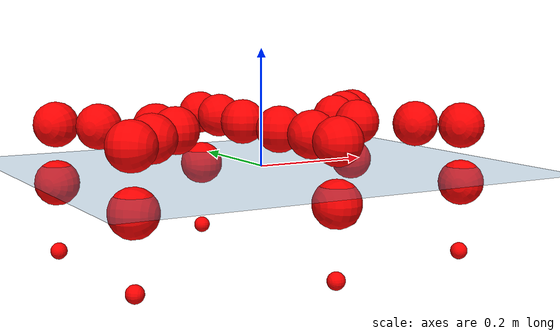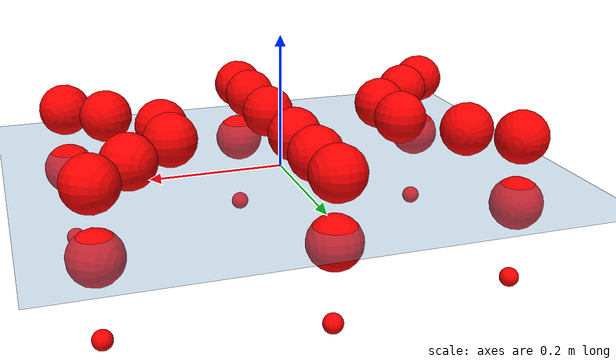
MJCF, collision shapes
<mujoco model="Golem">
  <compiler angle="radian" assetdir="assets" balanceinertia="true" inertiafromgeom="false"/>

  <option timestep="0.005" density="1.2" viscosity="2e-05"/>

  <size nkey="1"/>

  <visual>
    <quality shadowsize="8192"/>
    <map shadowclip="0.5"/>
  </visual>

  <default>
    <default class="/">
      <joint armature="0.01" damping="0.01" frictionloss="0.01"/>
      <geom contype="0" conaffinity="0" group="1" solref="-1000 -80"/>
      <site size="0.01 0.005 0.005" group="5"/>
      <general forcelimited="true" biastype="affine" gainprm="25" biasprm="0 -25 -0.5"/>
      <default class="visual">
        <geom type="mesh" group="2"/>
      </default>
      <default class="collision">
        <geom group="3"/>
      </default>
      <default class="foot">
        <geom size="0.01 0 0" condim="6" group="4" priority="1" solimp="0.015 1 0.01"/>
      </default>
      <default class="reward_collision_sphere">
        <geom group="5" rgba="1 0 0 1"/>
      </default>
    </default>
  </default>

  <asset>
    <texture type="skybox" colorspace="auto" name="//unnamed_texture_0" builtin="gradient" rgb1="0.95 0.95 0.95" rgb2="0.95 0.95 0.95" width="100" height="600"/>
    <texture type="2d" colorspace="auto" name="texplane" builtin="checker" rgb1="0.345 0.575 0.748" rgb2="0.345 0.575 0.748" markrgb="1 1 1" width="512" height="512"/>
    <material name="MatPlane" class="/" texture="texplane" texuniform="true" texrepeat="2 2" specular="0.9"/>
    <mesh name="body" class="/" file="body.stl" scale="0.001 0.001 0.001"/>
    <mesh name="coxa" class="/" file="coxa.stl" scale="0.001 0.001 0.001"/>
    <mesh name="femur" class="/" file="femur.stl" scale="0.001 0.001 0.001"/>
    <mesh name="tibia" class="/" file="tibia.stl" scale="0.001 0.001 0.001"/>
    <mesh name="tarsus" class="/" file="tarsus.stl" scale="0.001 0.001 0.001"/>
  </asset>

  <worldbody>
    <geom name="floor" class="/" size="100 100 0.125" type="plane" group="0" material="MatPlane"/>
    <light name="toplight_shadow" class="/" pos="0 0 5" dir="0.0990148 0.0990148 -0.990148" type="directional" ambient="0.04 0.04 0.04" diffuse="0.55 0.55 0.55" specular="0.12 0.12 0.12"/>
    <light name="toplight_fill" class="/" pos="0 0 5" dir="0.0990148 0.0990148 -0.990148" type="directional" castshadow="false" ambient="0.04 0.04 0.04" diffuse="0.3 0.3 0.3" specular="0.08 0.08 0.08"/>
    <body name="trunk" pos="-0.000212653 0.00261583 0.00122747" quat="1 3.81229e-05 0.000206847 -0.000143843">
      <inertial pos="0.00017615 0.000475542 -0.00507174" quat="1 -1.9952e-05 -0.000265761 -4.56983e-05" mass="3.66029" diaginertia="0.017757 0.00219572 0.01463"/>
      <joint name="//unnamed_joint_0" type="free"/>
      <geom name="//unnamed_geom_1" class="/" pos="0 0 0.0691093" quat="1 0 0 0" type="mesh" rgba="0.9 0.9 0.9 1" mesh="body"/>
      <site name="imu" class="/" pos="0.148 -0.00775881 0.110179" size="0.00977133"/>
      <camera name="track" class="/" pos="0 -1.46595 0" quat="0.707107 0.707107 0 0" mode="trackcom"/>
      <camera name="ego_camera" class="/" pos="0.145417 0 0.107983" quat="-0.5 -0.5 0.5 0.5"/>
      <body name="coxa_RR" pos="-0.19873 -0.0591481 0.0722885" quat="0.38198 0.000849896 0.000203612 -0.92417">
        <inertial pos="0.000363832 -0.00266471 0.00313448" quat="0.999993 0.00262847 0.00251314 -0.000733668" mass="0.190883" diaginertia="0.0173601 0.00211092 0.0146495"/>
        <joint name="coxa_joint_RR" class="/" pos="0 0 0" axis="0.00442797 -0.00187397 -0.999988" range="-3.09629 3.14095" armature="0.00988699" damping="0.0100625" frictionloss="0.0101801"/>
        <geom name="//unnamed_geom_2" class="/" type="mesh" rgba="0.2 0.2 0.2 1" mesh="coxa"/>
        <geom name="//unnamed_geom_3" class="reward_collision_sphere" size="0.0390853" pos="-0.0335579 0 0"/>
        <body name="femur_RR" pos="0.0690361 0.000445362 -0.000596435" quat="0.500459 -0.500375 0.500089 0.499076">
          <inertial pos="-0.00231081 -0.000484647 0.000949741" quat="1 -3.35303e-05 -7.05221e-05 -0.000204652" mass="0.189864" diaginertia="0.0178502 0.00217117 0.0150287"/>
          <joint name="femur_joint_RR" class="/" pos="0 0 0" axis="0.00138611 -0.000267842 -0.999999" stiffness="0.00379207" range="-3.1719 3.16106" armature="0.00883796" damping="0.00402267" frictionloss="0.00970469"/>
          <geom name="//unnamed_geom_4" class="/" type="mesh" rgba="0.9 0.9 0.9 1" mesh="femur"/>
          <geom name="//unnamed_geom_5" class="reward_collision_sphere" size="0.0390853"/>
          <body name="tibia_RR" pos="0.00136571 -0.0793177 -0.000179705" quat="0.000113198 1 -3.11083e-05 1.77001e-06">
            <inertial pos="0.000384519 0.00094296 -0.0010482" quat="0.999989 -0.00441085 0.00146735 -0.000811895" mass="0.183357" diaginertia="0.017576 0.00219563 0.0153198"/>
            <joint name="tibia_joint_RR" class="/" pos="0 0 0" axis="-0.00184208 0.00972955 0.999951" range="-3.14872 3.08785" armature="0.0103157" damping="0.0169715" frictionloss="0.00933238"/>
            <geom name="//unnamed_geom_6" class="/" type="mesh" rgba="0.2 0.2 0.2 1" mesh="tibia"/>
            <geom name="//unnamed_geom_7" class="reward_collision_sphere" size="0.0390853"/>
            <body name="tarsus_RR" pos="0.0981793 -0.0020996 -0.000996923" quat="1 0.000101896 0.000128874 -0.000208242">
              <inertial pos="0.0707107 0.00305506 -0.002484" quat="0.501519 0.498381 0.499284 0.50081" mass="0.194881" diaginertia="0.0178078 0.00225022 0.0151983"/>
              <joint name="tarsus_joint_RR" class="/" pos="0 0 0" axis="0.00014303 0.000161235 1" range="-3.08484 3.13054" armature="0.00954504" damping="0.0442889" frictionloss="0.0101305"/>
              <geom name="//unnamed_geom_8" class="/" type="mesh" rgba="0.9 0.9 0.9 1" mesh="tarsus"/>
              <geom name="foot_1" class="foot" size="0.00966742" pos="0.125283 0 0" quat="0 -0.707107 0 0.707107"/>
              <geom name="//unnamed_geom_10" class="reward_collision_sphere" size="0.0390853"/>
              <geom name="//unnamed_geom_11" class="reward_collision_sphere" size="0.014657" pos="0.120249 0 0"/>
              <site name="foot_1" class="foot" pos="0.125283 0 0" quat="0 -0.707107 0 0.707107" size="0.00977133"/>
            </body>
          </body>
        </body>
      </body>
      <body name="coxa_RM" pos="0.000771269 -0.0963412 0.067586" quat="0.707173 0.000116537 -6.64662e-05 -0.70704">
        <inertial pos="0.000750197 0.000623158 -0.000470133" quat="0.999996 -0.00134652 0.0022917 -0.000708365" mass="0.180678" diaginertia="0.0173071 0.00207705 0.0145234"/>
        <joint name="coxa_joint_RM" class="/" pos="0 0 0" axis="0.000395569 -0.00101206 -0.999999" range="-3.11798 3.15517" armature="0.00979301" damping="0.00736097" frictionloss="0.00848865"/>
        <geom name="//unnamed_geom_12" class="/" type="mesh" rgba="0.2 0.2 0.2 1" mesh="coxa"/>
        <geom name="//unnamed_geom_13" class="reward_collision_sphere" size="0.0390853" pos="-0.0335579 0 0"/>
        <body name="femur_RM" pos="0.0665218 0.00068341 0.00164633" quat="0.499579 -0.499854 0.500348 0.500219">
          <inertial pos="7.7917e-05 -0.00135262 0.00213346" quat="0.999987 -0.000452322 -0.00510183 0.000541855" mass="0.187604" diaginertia="0.0170215 0.00214169 0.0148049"/>
          <joint name="femur_joint_RM" class="/" pos="0 0 0" axis="-0.00223261 0.00544854 -0.999983" range="-3.15952 3.12374" armature="0.00999767" damping="0" frictionloss="0.00952099"/>
          <geom name="//unnamed_geom_14" class="/" type="mesh" rgba="0.9 0.9 0.9 1" mesh="femur"/>
          <geom name="//unnamed_geom_15" class="reward_collision_sphere" size="0.0390853"/>
          <body name="tibia_RM" pos="0.0024497 -0.0759565 -0.00116785" quat="-6.17703e-06 1 3.27508e-06 1.08325e-06">
            <inertial pos="-0.00270715 -0.00278006 -0.000443116" quat="0.999911 0.00127643 -0.0102852 -0.00838725" mass="0.187907" diaginertia="0.0174554 0.00212501 0.0142388"/>
            <joint name="tibia_joint_RM" class="/" pos="0 0 0" axis="-0.000481254 -0.00255373 0.999997" range="-3.13181 3.14877" armature="0.0101093" damping="0.0226118" frictionloss="0.0103246"/>
            <geom name="//unnamed_geom_16" class="/" type="mesh" rgba="0.2 0.2 0.2 1" mesh="tibia"/>
            <geom name="//unnamed_geom_17" class="reward_collision_sphere" size="0.0390853"/>
            <body name="tarsus_RM" pos="0.096465 -0.00152684 -0.000387502" quat="1 -0.000142501 0.000185661 -0.000330072">
              <inertial pos="0.0668623 -9.12437e-05 0.00113926" quat="0.499413 0.499052 0.500469 0.501063" mass="0.190522" diaginertia="0.0178405 0.00218469 0.0149845"/>
              <joint name="tarsus_joint_RM" class="/" pos="0 0 0" axis="0.00107281 -0.00349309 0.999993" range="-3.14048 3.12543" armature="0.00835894" damping="7.27656e-05" frictionloss="0.00952086"/>
              <geom name="//unnamed_geom_18" class="/" type="mesh" rgba="0.9 0.9 0.9 1" mesh="tarsus"/>
              <geom name="foot_2" class="foot" size="0.00907563" pos="0.125283 0 0" quat="0 -0.707107 0 0.707107"/>
              <geom name="//unnamed_geom_20" class="reward_collision_sphere" size="0.0390853"/>
              <geom name="//unnamed_geom_21" class="reward_collision_sphere" size="0.014657" pos="0.120249 0 0"/>
              <site name="foot_2" class="foot" pos="0.125283 0 0" quat="0 -0.707107 0 0.707107" size="0.00977133"/>
            </body>
          </body>
        </body>
      </body>
      <body name="coxa_RF" pos="0.196781 -0.0616309 0.0685717" quat="0.923811 -0.000210133 0.000154631 -0.382848">
        <inertial pos="0.00267773 0.000186079 0.000193177" quat="0.999994 0.00307288 0.0018308 0.000409509" mass="0.185129" diaginertia="0.0180228 0.00207865 0.0141493"/>
        <joint name="coxa_joint_RF" class="/" pos="0 0 0" axis="0.00501047 0.0037083 -0.999981" range="-3.16554 3.14971" armature="0.00948399" damping="0.0101418" frictionloss="0.0098685"/>
        <geom name="//unnamed_geom_22" class="/" type="mesh" rgba="0.2 0.2 0.2 1" mesh="coxa"/>
        <geom name="//unnamed_geom_23" class="reward_collision_sphere" size="0.0390853" pos="-0.0335579 0 0"/>
        <body name="femur_RF" pos="0.0683062 -0.0015779 0.000211818" quat="0.500295 -0.499958 0.499756 0.499991">
          <inertial pos="0.000159339 0.000912913 -0.00207821" quat="0.999991 -0.000156536 0.0043309 -6.18206e-05" mass="0.183883" diaginertia="0.0176278 0.00220359 0.0146092"/>
          <joint name="femur_joint_RF" class="/" pos="0 0 0" axis="-0.00121402 0.000606734 -0.999999" range="-3.08935 3.13884" armature="0.0106533" damping="0" frictionloss="0.00959142"/>
          <geom name="//unnamed_geom_24" class="/" type="mesh" rgba="0.9 0.9 0.9 1" mesh="femur"/>
          <geom name="//unnamed_geom_25" class="reward_collision_sphere" size="0.0390853"/>
          <body name="tibia_RF" pos="0.000640189 -0.0784359 -3.11382e-06" quat="-0.000218872 1 -5.63705e-05 3.80995e-05">
            <inertial pos="-0.000543977 0.00186821 0.000703872" quat="0.999991 -0.000136986 0.00396795 0.00144535" mass="0.185488" diaginertia="0.0180374 0.00207984 0.0150518"/>
            <joint name="tibia_joint_RF" class="/" pos="0 0 0" axis="-0.000542214 0.00416628 0.999991" range="-3.14648 3.15983" armature="0.00980553" damping="0.0072679" frictionloss="0.00864866"/>
            <geom name="//unnamed_geom_26" class="/" type="mesh" rgba="0.2 0.2 0.2 1" mesh="tibia"/>
            <geom name="//unnamed_geom_27" class="reward_collision_sphere" size="0.0390853"/>
            <body name="tarsus_RF" pos="0.0979473 0.00171195 0.00165922" quat="0.999999 0.00118472 -0.000570191 -0.000372178">
              <inertial pos="0.0655719 -0.0026509 0.00100951" quat="0.500352 0.490211 0.508687 0.500579" mass="0.180728" diaginertia="0.0180345 0.00203913 0.014634"/>
              <joint name="tarsus_joint_RF" class="/" pos="0 0 0" axis="-0.00651361 -0.00882127 0.99994" range="-3.08664 3.14623" armature="0.0109376" damping="0.00334307" frictionloss="0.00969143"/>
              <geom name="//unnamed_geom_28" class="/" type="mesh" rgba="0.9 0.9 0.9 1" mesh="tarsus"/>
              <geom name="foot_3" class="foot" size="0.0100342" pos="0.125283 0 0" quat="0 -0.707107 0 0.707107"/>
              <geom name="//unnamed_geom_30" class="reward_collision_sphere" size="0.0390853"/>
              <geom name="//unnamed_geom_31" class="reward_collision_sphere" size="0.014657" pos="0.120249 0 0"/>
              <site name="foot_3" class="foot" pos="0.125283 0 0" quat="0 -0.707107 0 0.707107" size="0.00977133"/>
            </body>
          </body>
        </body>
      </body>
      <body name="coxa_LR" pos="-0.199675 0.0637789 0.071021" quat="0.382753 -8.4531e-05 1.64829e-05 0.923851">
        <inertial pos="0.000965782 -0.00293812 -0.000124717" quat="0.999936 -0.0102616 0.0036584 -0.00315094" mass="0.179103" diaginertia="0.0167372 0.00211308 0.0142899"/>
        <joint name="coxa_joint_LR" class="/" pos="0 0 0" axis="-0.00622422 0.0027236 -0.999977" range="-3.14409 3.19195" armature="0.00847549" damping="0.00833471" frictionloss="0.0102057"/>
        <geom name="//unnamed_geom_32" class="/" type="mesh" rgba="0.2 0.2 0.2 1" mesh="coxa"/>
        <geom name="//unnamed_geom_33" class="reward_collision_sphere" size="0.0390853" pos="-0.0335579 0 0"/>
        <body name="femur_LR" pos="0.0701489 -0.00212162 -0.00292861" quat="0.499854 -0.500295 0.49927 0.500581">
          <inertial pos="-0.000572252 -0.000594577 -0.00130517" quat="0.999911 0.012535 0.00135057 -0.00446087" mass="0.185934" diaginertia="0.017767 0.00213764 0.0153327"/>
          <joint name="femur_joint_LR" class="/" pos="0 0 0" axis="0.0041056 0.00152696 0.99999" range="-3.08712 3.09338" armature="0.0102732" damping="0" frictionloss="0.0100387"/>
          <geom name="//unnamed_geom_34" class="/" type="mesh" rgba="0.9 0.9 0.9 1" mesh="femur"/>
          <geom name="//unnamed_geom_35" class="reward_collision_sphere" size="0.0390853"/>
          <body name="tibia_LR" pos="-0.000737581 -0.0811226 -0.00304911" quat="-6.47779e-06 1 -0.000124698 -0.000382077">
            <inertial pos="0.000488428 -0.00235434 0.0021612" quat="0.999982 0.00589605 0.000752201 -0.000571326" mass="0.187903" diaginertia="0.0179953 0.00213767 0.0147456"/>
            <joint name="tibia_joint_LR" class="/" pos="0 0 0" axis="-0.00117751 0.000836224 -0.999999" range="-3.18595 3.15886" armature="0.00926001" damping="0" frictionloss="0.0104435"/>
            <geom name="//unnamed_geom_36" class="/" type="mesh" rgba="0.2 0.2 0.2 1" mesh="tibia"/>
            <geom name="//unnamed_geom_37" class="reward_collision_sphere" size="0.0390853"/>
            <body name="tarsus_LR" pos="0.100952 0.000524219 0.000314255" quat="0.999999 0.00117279 -0.000216616 -0.000328875">
              <inertial pos="0.0705184 0.000765322 -0.000298241" quat="0.505853 0.499948 0.499017 0.495124" mass="0.190888" diaginertia="0.0174588 0.00212229 0.0146374"/>
              <joint name="tarsus_joint_LR" class="/" pos="0 0 0" axis="0.00100586 -0.00379982 -0.999992" range="-3.19 3.14334" armature="0.00983813" damping="0.0263872" frictionloss="0.00849821"/>
              <geom name="//unnamed_geom_38" class="/" type="mesh" rgba="0.9 0.9 0.9 1" mesh="tarsus"/>
              <geom name="foot_4" class="foot" size="0.00974863" pos="0.125283 0 0" quat="0.707107 0 -0.707107 0"/>
              <geom name="//unnamed_geom_40" class="reward_collision_sphere" size="0.0390853"/>
              <geom name="//unnamed_geom_41" class="reward_collision_sphere" size="0.014657" pos="0.120249 0 0"/>
              <site name="foot_4" class="foot" pos="0.125283 0 0" quat="0.707107 0 -0.707107 0" size="0.00977133"/>
            </body>
          </body>
        </body>
      </body>
      <body name="coxa_LM" pos="-0.000601651 0.0956533 0.0688424" quat="0.707079 0.000136905 -0.00026524 0.707134">
        <inertial pos="-0.00198177 0.000746218 -0.0015632" quat="0.999999 -0.00153696 -0.000132952 -0.000695293" mass="0.184752" diaginertia="0.016913 0.00203705 0.0151089"/>
        <joint name="coxa_joint_LM" class="/" pos="0 0 0" axis="-0.00266574 0.00456473 -0.999986" range="-3.14044 3.1415" armature="0.0110955" damping="0.0012628" frictionloss="0.00902762"/>
        <geom name="//unnamed_geom_42" class="/" type="mesh" rgba="0.2 0.2 0.2 1" mesh="coxa"/>
        <geom name="//unnamed_geom_43" class="reward_collision_sphere" size="0.0390853" pos="-0.0335579 0 0"/>
        <body name="femur_LM" pos="0.0622932 -0.00221167 0.00263057" quat="0.500272 -0.499651 0.49999 0.500086">
          <inertial pos="0.00233846 0.000327925 0.00252041" quat="0.999998 -0.00134041 -0.000731233 -0.00126254" mass="0.186283" diaginertia="0.0175737 0.00212257 0.0147076"/>
          <joint name="femur_joint_LM" class="/" pos="0 0 0" axis="-0.00201275 0.00433805 0.999989" range="-3.15219 3.09549" armature="0.00990757" damping="0" frictionloss="0.0105929"/>
          <geom name="//unnamed_geom_44" class="/" type="mesh" rgba="0.9 0.9 0.9 1" mesh="femur"/>
          <geom name="//unnamed_geom_45" class="reward_collision_sphere" size="0.0390853"/>
          <body name="tibia_LM" pos="0.000672164 -0.0759145 0.00194098" quat="-1.43538e-05 1 -7.56171e-06 -1.65929e-05">
            <inertial pos="-0.000966783 -0.00275714 0.00269161" quat="0.999914 0.00513538 0.00599325 -0.0104433" mass="0.181644" diaginertia="0.0175779 0.00207847 0.0143075"/>
            <joint name="tibia_joint_LM" class="/" pos="0 0 0" axis="-0.00564622 0.0083588 -0.999949" range="-3.14724 3.08654" armature="0.0095282" damping="0" frictionloss="0.00993472"/>
            <geom name="//unnamed_geom_46" class="/" type="mesh" rgba="0.2 0.2 0.2 1" mesh="tibia"/>
            <geom name="//unnamed_geom_47" class="reward_collision_sphere" size="0.0390853"/>
            <body name="tarsus_LM" pos="0.09677 -0.00142097 0.00194" quat="1 0.00011824 -3.59575e-05 -0.000230865">
              <inertial pos="0.0661119 0.000637105 -0.00246238" quat="0.500982 0.50417 0.488769 0.505899" mass="0.192193" diaginertia="0.0176715 0.00205393 0.0143421"/>
              <joint name="tarsus_joint_LM" class="/" pos="0 0 0" axis="0.00899354 0.00697633 -0.999935" range="-3.14499 3.08709" armature="0.00979983" damping="0.00157719" frictionloss="0.00982907"/>
              <geom name="//unnamed_geom_48" class="/" type="mesh" rgba="0.9 0.9 0.9 1" mesh="tarsus"/>
              <geom name="foot_5" class="foot" size="0.0099254" pos="0.125283 0 0" quat="0.707107 0 -0.707107 0"/>
              <geom name="//unnamed_geom_50" class="reward_collision_sphere" size="0.0390853"/>
              <geom name="//unnamed_geom_51" class="reward_collision_sphere" size="0.014657" pos="0.120249 0 0"/>
              <site name="foot_5" class="foot" pos="0.125283 0 0" quat="0.707107 0 -0.707107 0" size="0.00977133"/>
            </body>
          </body>
        </body>
      </body>
      <body name="coxa_LF" pos="0.199005 0.0620207 0.0709587" quat="0.924038 -0.000195524 0.00119983 0.382299">
        <inertial pos="-0.000633073 0.00111552 -6.79373e-05" quat="0.999914 0.00403997 0.00517471 -0.0113497" mass="0.190661" diaginertia="0.0172357 0.00216133 0.014034"/>
        <joint name="coxa_joint_LF" class="/" pos="0 0 0" axis="-0.00335357 -0.000158844 -0.999994" range="-3.13907 3.13617" armature="0.00980014" damping="0.00395395" frictionloss="0.00928184"/>
        <geom name="//unnamed_geom_52" class="/" type="mesh" rgba="0.2 0.2 0.2 1" mesh="coxa"/>
        <geom name="//unnamed_geom_53" class="reward_collision_sphere" size="0.0390853" pos="-0.0335579 0 0"/>
        <body name="femur_LF" pos="0.0668606 0.00146905 0.000507128" quat="0.499963 -0.500052 0.500163 0.499822">
          <inertial pos="0.00260376 0.000304306 0.00263717" quat="0.999997 -0.0002532 -0.000535695 0.00248349" mass="0.183023" diaginertia="0.0168361 0.00211151 0.0140907"/>
          <joint name="femur_joint_LF" class="/" pos="0 0 0" axis="0.00321794 -0.00233884 0.999992" range="-3.13214 3.19088" armature="0.0107409" damping="0" frictionloss="0.0099836"/>
          <geom name="//unnamed_geom_54" class="/" type="mesh" rgba="0.9 0.9 0.9 1" mesh="femur"/>
          <geom name="//unnamed_geom_55" class="reward_collision_sphere" size="0.0390853"/>
          <body name="tibia_LF" pos="0.00304424 -0.0808847 -0.00025865" quat="-0.000569793 1 0.000419425 0.000486076">
            <inertial pos="0.000717901 -0.000791935 0.000164998" quat="0.999998 -0.000962292 0.00186413 0.000333221" mass="0.186766" diaginertia="0.0173726 0.00212632 0.0146591"/>
            <joint name="tibia_joint_LF" class="/" pos="0 0 0" axis="0.000346208 0.00954249 -0.999954" range="-3.1343 3.17417" armature="0.00846625" damping="0.00454461" frictionloss="0.00940222"/>
            <geom name="//unnamed_geom_56" class="/" type="mesh" rgba="0.2 0.2 0.2 1" mesh="tibia"/>
            <geom name="//unnamed_geom_57" class="reward_collision_sphere" size="0.0390853"/>
            <body name="tarsus_LF" pos="0.10009 0.00129725 -0.00122109" quat="1 1.51718e-06 2.12622e-06 -3.85605e-06">
              <inertial pos="0.0653032 6.65264e-05 -0.000223545" quat="0.500025 0.500016 0.498916 0.501041" mass="0.183491" diaginertia="0.0175996 0.00211415 0.0148308"/>
              <joint name="tarsus_joint_LF" class="/" pos="0 0 0" axis="0.00267912 0.00359714 -0.99999" stiffness="0.0198538" range="-3.19157 3.19155" armature="0.00985256" damping="0" frictionloss="0.00962576"/>
              <geom name="//unnamed_geom_58" class="/" type="mesh" rgba="0.9 0.9 0.9 1" mesh="tarsus"/>
              <geom name="foot_6" class="foot" size="0.00984649" pos="0.125283 0 0" quat="0.707107 0 -0.707107 0"/>
              <geom name="//unnamed_geom_60" class="reward_collision_sphere" size="0.0390853"/>
              <geom name="//unnamed_geom_61" class="reward_collision_sphere" size="0.014657" pos="0.120249 0 0"/>
              <site name="foot_6" class="foot" pos="0.125283 0 0" quat="0.707107 0 -0.707107 0" size="0.00977133"/>
            </body>
          </body>
        </body>
      </body>
    </body>
  </worldbody>

  <contact>
    <pair class="/" geom1="floor" geom2="foot_1" name="//unnamed_contact_0"/>
    <pair class="/" geom1="floor" geom2="foot_2" name="//unnamed_contact_1"/>
    <pair class="/" geom1="floor" geom2="foot_3" name="//unnamed_contact_2"/>
    <pair class="/" geom1="floor" geom2="foot_4" name="//unnamed_contact_3"/>
    <pair class="/" geom1="floor" geom2="foot_5" name="//unnamed_contact_4"/>
    <pair class="/" geom1="floor" geom2="foot_6" name="//unnamed_contact_5"/>
  </contact>

  <actuator>
    <general name="coxa_joint_RR" class="/" joint="coxa_joint_RR" forcerange="-7.13563 7.13563" gainprm="23.2898" biasprm="0 -23.2898 -0.531669"/>
    <general name="femur_joint_RR" class="/" joint="femur_joint_RR" forcerange="-6.96306 6.96306" gainprm="23.2898" biasprm="0 -23.2898 -0.531669"/>
    <general name="tibia_joint_RR" class="/" joint="tibia_joint_RR" forcerange="-6.41851 6.41851" gainprm="23.2898" biasprm="0 -23.2898 -0.531669"/>
    <general name="tarsus_joint_RR" class="/" joint="tarsus_joint_RR" forcerange="-6.73412 6.73412" gainprm="23.2898" biasprm="0 -23.2898 -0.531669"/>
    <general name="coxa_joint_RM" class="/" joint="coxa_joint_RM" forcerange="-7.14858 7.14858" gainprm="23.2898" biasprm="0 -23.2898 -0.531669"/>
    <general name="femur_joint_RM" class="/" joint="femur_joint_RM" forcerange="-7.25222 7.25222" gainprm="23.2898" biasprm="0 -23.2898 -0.531669"/>
    <general name="tibia_joint_RM" class="/" joint="tibia_joint_RM" forcerange="-6.43285 6.43285" gainprm="23.2898" biasprm="0 -23.2898 -0.531669"/>
    <general name="tarsus_joint_RM" class="/" joint="tarsus_joint_RM" forcerange="-7.35578 7.35578" gainprm="23.2898" biasprm="0 -23.2898 -0.531669"/>
    <general name="coxa_joint_RF" class="/" joint="coxa_joint_RF" forcerange="-7.04087 7.04087" gainprm="23.2898" biasprm="0 -23.2898 -0.531669"/>
    <general name="femur_joint_RF" class="/" joint="femur_joint_RF" forcerange="-7.83404 7.83404" gainprm="23.2898" biasprm="0 -23.2898 -0.531669"/>
    <general name="tibia_joint_RF" class="/" joint="tibia_joint_RF" forcerange="-7.30343 7.30343" gainprm="23.2898" biasprm="0 -23.2898 -0.531669"/>
    <general name="tarsus_joint_RF" class="/" joint="tarsus_joint_RF" forcerange="-7.83542 7.83542" gainprm="23.2898" biasprm="0 -23.2898 -0.531669"/>
    <general name="coxa_joint_LR" class="/" joint="coxa_joint_LR" forcerange="-6.48728 6.48728" gainprm="23.2898" biasprm="0 -23.2898 -0.531669"/>
    <general name="femur_joint_LR" class="/" joint="femur_joint_LR" forcerange="-7.04989 7.04989" gainprm="23.2898" biasprm="0 -23.2898 -0.531669"/>
    <general name="tibia_joint_LR" class="/" joint="tibia_joint_LR" forcerange="-7.45138 7.45138" gainprm="23.2898" biasprm="0 -23.2898 -0.531669"/>
    <general name="tarsus_joint_LR" class="/" joint="tarsus_joint_LR" forcerange="-7.15309 7.15309" gainprm="23.2898" biasprm="0 -23.2898 -0.531669"/>
    <general name="coxa_joint_LM" class="/" joint="coxa_joint_LM" forcerange="-7.2524 7.2524" gainprm="23.2898" biasprm="0 -23.2898 -0.531669"/>
    <general name="femur_joint_LM" class="/" joint="femur_joint_LM" forcerange="-7.07701 7.07701" gainprm="23.2898" biasprm="0 -23.2898 -0.531669"/>
    <general name="tibia_joint_LM" class="/" joint="tibia_joint_LM" forcerange="-6.42146 6.42146" gainprm="23.2898" biasprm="0 -23.2898 -0.531669"/>
    <general name="tarsus_joint_LM" class="/" joint="tarsus_joint_LM" forcerange="-6.63775 6.63775" gainprm="23.2898" biasprm="0 -23.2898 -0.531669"/>
    <general name="coxa_joint_LF" class="/" joint="coxa_joint_LF" forcerange="-6.99864 6.99864" gainprm="23.2898" biasprm="0 -23.2898 -0.531669"/>
    <general name="femur_joint_LF" class="/" joint="femur_joint_LF" forcerange="-6.46415 6.46415" gainprm="23.2898" biasprm="0 -23.2898 -0.531669"/>
    <general name="tibia_joint_LF" class="/" joint="tibia_joint_LF" forcerange="-7.25636 7.25636" gainprm="23.2898" biasprm="0 -23.2898 -0.531669"/>
    <general name="tarsus_joint_LF" class="/" joint="tarsus_joint_LF" forcerange="-7.10314 7.10314" gainprm="23.2898" biasprm="0 -23.2898 -0.531669"/>
  </actuator>

  <sensor>
    <gyro site="imu" name="imu_angular_velocity"/>
    <velocimeter site="imu" name="imu_linear_velocity"/>
    <framelinvel objtype="site" objname="foot_1" name="foot_1_global_linear_velocity"/>
    <framelinvel objtype="site" objname="foot_2" name="foot_2_global_linear_velocity"/>
    <framelinvel objtype="site" objname="foot_3" name="foot_3_global_linear_velocity"/>
    <framelinvel objtype="site" objname="foot_4" name="foot_4_global_linear_velocity"/>
    <framelinvel objtype="site" objname="foot_5" name="foot_5_global_linear_velocity"/>
    <framelinvel objtype="site" objname="foot_6" name="foot_6_global_linear_velocity"/>
  </sensor>

  <keyframe>
    <key name="home" qpos="0 0 0.1457 1 0 0 0 0 0 0 0 0 0 0 0 0 0 0 0 0 0 0 0 0 0 0 0 0 0 0 0"/>
  </keyframe>
</mujoco>
